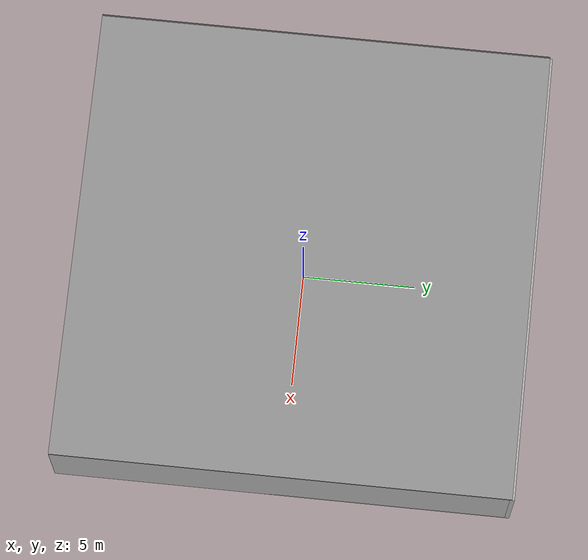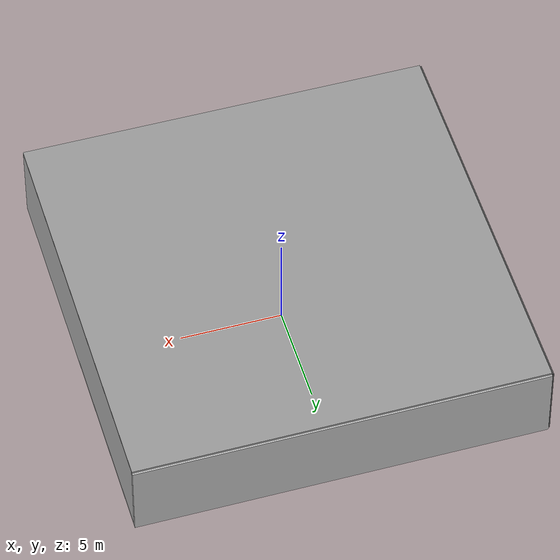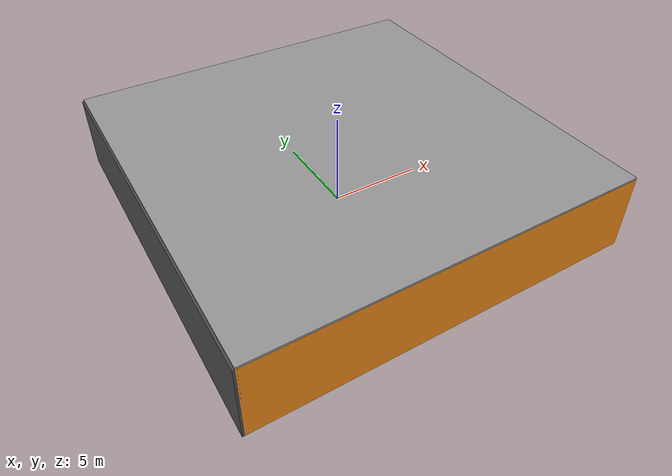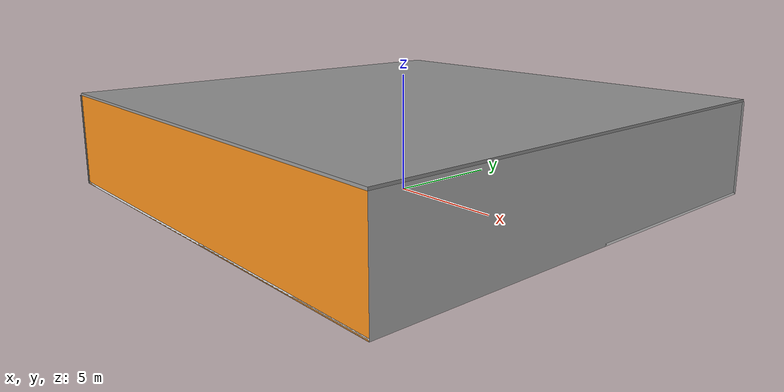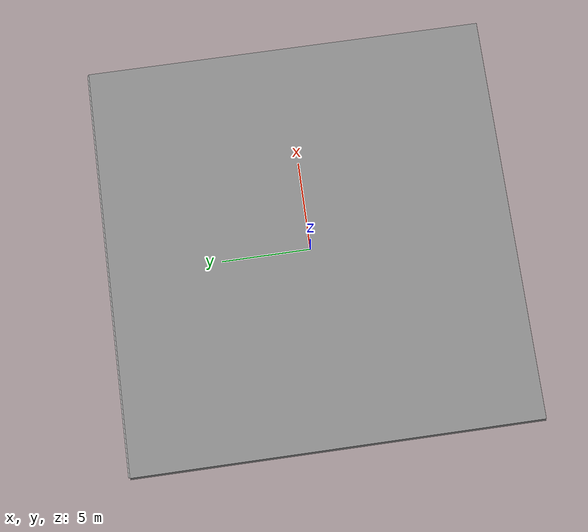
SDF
<sdf version="1.4">
 <world name="default">
  <physics type="ode">
   <max_step_size>0.001</max_step_size>
   <real_time_factor>1</real_time_factor>
   <real_time_update_rate>1000</real_time_update_rate>
   <gravity>0 0 -9.8</gravity>
  </physics>
  <scene><ambient>0.4 0.4 0.4 1</ambient><background>0.7 0.7 0.7 1</background><shadows>1</shadows></scene>
  <model name="Surrounding">
   <static>1</static>
   <link name="Ceiling">
    <collision name="Ceiling_Collision"><geometry><box><size>20 20 0.1</size></box></geometry></collision>
    <visual name="Ceiling_Visual">
     <geometry><box><size>20 20 0.1</size></box></geometry>
     <material>
      <script><uri>file://media/materials/scripts/gazebo.material</uri><name>Gazebo/Grey</name></script>
     </material>
    </visual>
    <pose>0 0 4.05 0 0 0</pose>
   </link>
   <link name="Wall_South">
    <collision name="Wall_South_Collision">
     <geometry><box><size>20 0 4</size></box></geometry>
     <pose>0 0 2 0 -0 0</pose>
    </collision>
    <visual name="Wall_South_Visual">
     <pose>0 0 2 0 -0 0</pose>
     <geometry><box><size>20 0 4</size></box></geometry>
     <material>
      <script><uri>file://media/materials/scripts/gazebo.material</uri><name>Gazebo/Orange</name></script>
     </material>
    </visual>
    <velocity_decay><linear>0</linear><angular>0</angular></velocity_decay>
    <pose>0 -10 0 0 -0 0</pose>
   </link>
   <link name="Wall_East">
    <collision name="Wall_21_Collision">
     <geometry><box><size>20 0 4</size></box></geometry>
     <pose>0 0 2 0 -0 0</pose>
    </collision>
    <visual name="Wall_21_Visual">
     <pose>0 0 2 0 -0 0</pose>
     <geometry><box><size>20 0 4</size></box></geometry>
     <material>
      <script><uri>file://media/materials/scripts/gazebo.material</uri><name>Gazebo/LightOff</name></script>
     </material>
    </visual>
    <velocity_decay><linear>0</linear><angular>0</angular></velocity_decay>
    <pose>10 0 0 0 -0 1.5708</pose>
   </link>
   <link name="Wall_North">
    <collision name="Wall_22_Collision">
     <geometry><box><size>20 0.2 4</size></box></geometry>
     <pose>0 0 2 0 -0 0</pose>
    </collision>
    <visual name="Wall_22_Visual">
     <pose>0 0 2 0 -0 0</pose>
     <geometry><box><size>20 0.2 4</size></box></geometry>
     <material>
      <script><uri>file://media/materials/scripts/gazebo.material</uri><name>Gazebo/CloudySky</name></script>
     </material>
    </visual>
    <velocity_decay><linear>0</linear><angular>0</angular></velocity_decay>
    <pose>0 10 0 0 -0 0</pose>
   </link>
   <link name="Wall_West">
    <collision name="Wall_23_Collision">
     <geometry><box><size>20 0.2 4</size></box></geometry>
     <pose>0 0 2 0 -0 0</pose>
    </collision>
    <visual name="Wall_23_Visual">
     <pose>0 0 2 0 -0 0</pose>
     <geometry><box><size>20 0.2 4</size></box></geometry>
     <material>
      <script><uri>file://media/materials/scripts/gazebo.material</uri><name>Gazebo/Road</name></script>
     </material>
    </visual>
    <velocity_decay><linear>0</linear><angular>0</angular></velocity_decay>
    <pose>-10 0 0 0 0 -1.5708</pose>
   </link>
   <link name="Ground_link">
    <collision name="collision">
     <pose>0 0 .05 0 -0 0</pose>
     <geometry><box><size>20 20 0.1</size></box></geometry>
    </collision>
    <visual name="visual">
     <pose>0 0 .05 0 -0 0</pose>
     <geometry><box><size>20 20 0.1</size></box></geometry>
     <material>
      <script><uri>file://media/materials/scripts/gazebo.material</uri><name>Gazebo/White</name></script>
     </material>
    </visual>
   </link>
   <static>1</static>
  </model>
  <spherical_coordinates>
   <surface_model>EARTH_WGS84</surface_model>
   <latitude_deg>0</latitude_deg>
   <longitude_deg>0</longitude_deg>
   <elevation>0</elevation>
   <heading_deg>0</heading_deg>
  </spherical_coordinates>
  <light name="lightball_0" type="diffuse">
   <diffuse>0.8 0.8 0.8 1</diffuse>
   <specular>0.2 0.2 0.2 1</specular>
   <attenuation>
    <range>100</range>
    <constant>0.7</constant>
    <linear>0.01</linear>
    <quadratic>0.001</quadratic>
   </attenuation>
   <direction>-0.5 0.1 -0.9</direction>
   <pose>9.82679114116 6.50377541007 3.8661947012 0 0 0</pose>
  </light>
  <light name="lightball_1" type="diffuse">
   <diffuse>0.8 0.8 0.8 1</diffuse>
   <specular>0.2 0.2 0.2 1</specular>
   <attenuation>
    <range>100</range>
    <constant>0.7</constant>
    <linear>0.01</linear>
    <quadratic>0.001</quadratic>
   </attenuation>
   <direction>-0.5 0.1 -0.9</direction>
   <pose>6.55171862794 0.537257789948 1.16790177147 0 0 0</pose>
  </light>
  <light name="lightball_2" type="diffuse">
   <diffuse>0.8 0.8 0.8 1</diffuse>
   <specular>0.2 0.2 0.2 1</specular>
   <attenuation>
    <range>100</range>
    <constant>0.7</constant>
    <linear>0.01</linear>
    <quadratic>0.001</quadratic>
   </attenuation>
   <direction>-0.5 0.1 -0.9</direction>
   <pose>9.25805330655 -0.376439027256 2.61002756077 0 0 0</pose>
  </light>
  <light name="lightball_3" type="diffuse">
   <diffuse>0.8 0.8 0.8 1</diffuse>
   <specular>0.2 0.2 0.2 1</specular>
   <attenuation>
    <range>100</range>
    <constant>0.7</constant>
    <linear>0.01</linear>
    <quadratic>0.001</quadratic>
   </attenuation>
   <direction>-0.5 0.1 -0.9</direction>
   <pose>-2.3217229529 -4.85150284961 3.79069333556 0 0 0</pose>
  </light>
  <light name="lightball_4" type="diffuse">
   <diffuse>0.8 0.8 0.8 1</diffuse>
   <specular>0.2 0.2 0.2 1</specular>
   <attenuation>
    <range>100</range>
    <constant>0.7</constant>
    <linear>0.01</linear>
    <quadratic>0.001</quadratic>
   </attenuation>
   <direction>-0.5 0.1 -0.9</direction>
   <pose>1.52034772766 -5.32619388348 1.1917437772 0 0 0</pose>
  </light>
  <light name="lightball_5" type="diffuse">
   <diffuse>0.8 0.8 0.8 1</diffuse>
   <specular>0.2 0.2 0.2 1</specular>
   <attenuation>
    <range>100</range>
    <constant>0.7</constant>
    <linear>0.01</linear>
    <quadratic>0.001</quadratic>
   </attenuation>
   <direction>-0.5 0.1 -0.9</direction>
   <pose>-2.99781449458 -9.79858886449 2.52305339424 0 0 0</pose>
  </light>
  <light name="lightball_6" type="diffuse">
   <diffuse>0.8 0.8 0.8 1</diffuse>
   <specular>0.2 0.2 0.2 1</specular>
   <attenuation>
    <range>100</range>
    <constant>0.7</constant>
    <linear>0.01</linear>
    <quadratic>0.001</quadratic>
   </attenuation>
   <direction>-0.5 0.1 -0.9</direction>
   <pose>5.18021590522 7.37892721833 1.65998904999 0 0 0</pose>
  </light>
  <light name="lightball_7" type="diffuse">
   <diffuse>0.8 0.8 0.8 1</diffuse>
   <specular>0.2 0.2 0.2 1</specular>
   <attenuation>
    <range>100</range>
    <constant>0.7</constant>
    <linear>0.01</linear>
    <quadratic>0.001</quadratic>
   </attenuation>
   <direction>-0.5 0.1 -0.9</direction>
   <pose>0.559460703194 8.03767221399 3.0155967429 0 0 0</pose>
  </light>
  <light name="lightball_8" type="diffuse">
   <diffuse>0.8 0.8 0.8 1</diffuse>
   <specular>0.2 0.2 0.2 1</specular>
   <attenuation>
    <range>100</range>
    <constant>0.7</constant>
    <linear>0.01</linear>
    <quadratic>0.001</quadratic>
   </attenuation>
   <direction>-0.5 0.1 -0.9</direction>
   <pose>8.20405405742 3.7022171699 3.30150812601 0 0 0</pose>
  </light>
  <light name="lightball_9" type="diffuse">
   <diffuse>0.8 0.8 0.8 1</diffuse>
   <specular>0.2 0.2 0.2 1</specular>
   <attenuation>
    <range>100</range>
    <constant>0.7</constant>
    <linear>0.01</linear>
    <quadratic>0.001</quadratic>
   </attenuation>
   <direction>-0.5 0.1 -0.9</direction>
   <pose>8.6513274764 6.52661033741 0.717117068984 0 0 0</pose>
  </light>
  <include>
   <uri>model://textured_shapes</uri>
   <pose>-7.39873043655 -5.34806252143 0 0 0 0.250266418758</pose>
  </include>
  <include>
   <uri>model://construction_cone</uri>
   <pose>-7.64430862452 6.89009221694 0 0 0 2.34551947468</pose>
  </include>
  <include>
   <uri>model://textured_shapes</uri>
   <pose>-3.99178231814 0.650650922494 0 0 0 0.201227685504</pose>
  </include>
  <include><uri>model://table</uri><pose>-2.27469190068 -0.419662854186 0 0 0 2.71809439686</pose></include>
  <include>
   <uri>model://construction_cone</uri>
   <pose>0.802354143072 -7.17389360345 0 0 0 2.18790491305</pose>
  </include>
  <include>
   <uri>model://robocup_3Dsim_goal</uri>
   <pose>7.7124735448 -1.92990569167 0 0 0 2.0589025787</pose>
  </include>
  <include>
   <uri>model://textured_shapes</uri>
   <pose>6.60779195132 0.775262162696 0 0 0 1.13964549906</pose>
  </include>
 </world>
</sdf>

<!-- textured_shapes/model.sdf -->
<sdf version="1.6">
  <model name="textured_shapes">
    <pose>0 0 0.5 0 0 0</pose>
    <link name="box">
      <pose>0 -1.5 0 0 0 0</pose>
      <collision name="collision">
        <geometry>
          <box>
            <size>1 1 1</size>
          </box>
        </geometry>
      </collision>
      <visual name="visual">
        <geometry>
          <box>
            <size>1 1 1</size>
          </box>
        </geometry>
        <material>
          <script>
            <uri>model://../model_source/models/textured_shapes/materials/scripts</uri>
            <uri>model://../model_source/models/textured_shapes/materials/textures</uri>
            <name>TexturedShape/Squares</name>
          </script>
        </material>
      </visual>
    </link>
    <link name="sphere">
      <collision name="collision">
        <geometry>
          <sphere>
            <radius>0.5</radius>
          </sphere>
        </geometry>
      </collision>
      <visual name="visual">
        <geometry>
          <sphere>
            <radius>0.5</radius>
          </sphere>
        </geometry>
        <material>
          <script>
            <uri>model://../model_source/models/textured_shapes/materials/scripts</uri>
            <uri>model://../model_source/models/textured_shapes/materials/textures</uri>
            <name>TexturedShape/Squares</name>
          </script>
        </material>
      </visual>
    </link>
    <link name="cylinder">
      <pose>0 1.5 0 0 0 0</pose>
      <collision name="collision">
        <geometry>
          <cylinder>
            <radius>0.5</radius>
            <length>1</length>
          </cylinder>
        </geometry>
      </collision>
      <visual name="visual">
        <geometry>
          <cylinder>
            <radius>0.5</radius>
            <length>1</length>
          </cylinder>
        </geometry>
        <material>
          <script>
            <uri>model://../model_source/models/textured_shapes/materials/scripts</uri>
            <uri>model://../model_source/models/textured_shapes/materials/textures</uri>
            <name>TexturedShape/Squares</name>
          </script>
        </material>
      </visual>
    </link>
  </model>
</sdf>

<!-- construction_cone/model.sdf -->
<sdf version="1.5">
  <model name="Construction Cone">
    <link name="link">
      <collision name="collision">
        <geometry>
          <mesh>
            <scale>10 10 10</scale>
            <uri>file://isr-testbed/construction_cone/meshes/construction_cone.dae</uri>
          </mesh>
        </geometry>
      </collision>
      <visual name="visual">
        <geometry>
          <mesh>
            <scale>10 10 10</scale>
            <uri>file://isr-testbed/construction_cone/meshes/construction_cone.dae</uri>
          </mesh>
        </geometry>
      </visual>
    </link>
  </model>
</sdf>

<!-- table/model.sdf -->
<sdf version="1.5">
  <model name="table">
    <static>true</static>
    <link name="link">
      <collision name="surface">
        <pose>0 0 1.0 0 0 0</pose>
        <geometry>
          <box>
            <size>1.5 0.8 0.03</size>
          </box>
        </geometry>
        <surface>
          <friction>
            <ode>
              <mu>0.6</mu>
              <mu2>0.6</mu2>
            </ode>
          </friction>
        </surface>
      </collision>
      <visual name="visual1">
        <pose>0 0 1.0 0 0 0</pose>
        <geometry>
          <box>
            <size>1.5 0.8 0.03</size>
          </box>
        </geometry>
        <material>
          <script>
            <uri>model://media/materials/scripts/gazebo.material</uri>
            <name>Gazebo/Wood</name>
          </script>
        </material>
      </visual>
      <collision name="front_left_leg">
        <pose>0.68 0.38 0.5 0 0 0</pose>
        <geometry>
          <cylinder>
            <radius>0.02</radius>
            <length>1.0</length>
          </cylinder>
        </geometry>
      </collision>
      <visual name="front_left_leg">
        <pose>0.68 0.38 0.5 0 0 0</pose>
        <geometry>
          <cylinder>
            <radius>0.02</radius>
            <length>1.0</length>
          </cylinder>
        </geometry>
        <material>
          <script>
            <uri>model://media/materials/scripts/gazebo.material</uri>
            <name>Gazebo/Grey</name>
          </script>
        </material>
      </visual>
      <collision name="front_right_leg">
        <pose>0.68 -0.38 0.5 0 0 0</pose>
        <geometry>
          <cylinder>
            <radius>0.02</radius>
            <length>1.0</length>
          </cylinder>
        </geometry>
      </collision>
      <visual name="front_right_leg">
        <pose>0.68 -0.38 0.5 0 0 0</pose>
        <geometry>
          <cylinder>
            <radius>0.02</radius>
            <length>1.0</length>
          </cylinder>
        </geometry>
        <material>
          <script>
            <uri>model://media/materials/scripts/gazebo.material</uri>
            <name>Gazebo/Grey</name>
          </script>
        </material>
      </visual>
      <collision name="back_right_leg">
        <pose>-0.68 -0.38 0.5 0 0 0</pose>
        <geometry>
          <cylinder>
            <radius>0.02</radius>
            <length>1.0</length>
          </cylinder>
        </geometry>
      </collision>
      <visual name="back_right_leg">
        <pose>-0.68 -0.38 0.5 0 0 0</pose>
        <geometry>
          <cylinder>
            <radius>0.02</radius>
            <length>1.0</length>
          </cylinder>
        </geometry>
        <material>
          <script>
            <uri>model://media/materials/scripts/gazebo.material</uri>
            <name>Gazebo/Grey</name>
          </script>
        </material>
      </visual>
      <collision name="back_left_leg">
        <pose>-0.68 0.38 0.5 0 0 0</pose>
        <geometry>
          <cylinder>
            <radius>0.02</radius>
            <length>1.0</length>
          </cylinder>
        </geometry>
      </collision>
      <visual name="back_left_leg">
        <pose>-0.68 0.38 0.5 0 0 0</pose>
        <geometry>
          <cylinder>
            <radius>0.02</radius>
            <length>1.0</length>
          </cylinder>
        </geometry>
        <material>
          <script>
            <uri>model://media/materials/scripts/gazebo.material</uri>
            <name>Gazebo/Grey</name>
          </script>
        </material>
      </visual>
    </link>
  </model>
</sdf>

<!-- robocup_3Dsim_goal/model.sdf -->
<sdf version="1.5">
  <model name="robocup_3d_goal">
    <static>true</static>
    <link name="left_post">
      <pose>0 1.05 0.45 0 0 0</pose>
      <collision name="collision">
        <geometry>
          <cylinder>
            <radius>0.05</radius>
            <length>0.9</length>
          </cylinder>
        </geometry>
      </collision>
      <visual name="visual">
        <geometry>
          <cylinder>
            <radius>0.05</radius>
            <length>0.9</length>
          </cylinder>
        </geometry>
        <material>
          <script>
            <uri>file://media/materials/scripts/gazebo.material</uri>
            <name>Gazebo/ZincYellow</name>
          </script>
        </material>
      </visual>
    </link>
    <link name="left_support_horiz_lower">
      <pose>0.30 1.05 0.01 0 0 0</pose>
      <collision name="collision">
        <geometry>
          <box>
            <size>0.50 0.02 0.02</size>
          </box>
        </geometry>
      </collision>
      <visual name="visual">
        <geometry>
          <box>
            <size>0.50 0.02 0.02</size>
          </box>
        </geometry>
        <material>
          <script>
            <uri>file://media/materials/scripts/gazebo.material</uri>
            <name>Gazebo/White</name>
          </script>
        </material>
      </visual>
    </link>
    <link name="left_support_horiz_upper">
      <pose>0.30 1.05 0.79 0 0 0</pose>
      <collision name="collision">
        <geometry>
          <box>
            <size>0.50 0.02 0.02</size>
          </box>
        </geometry>
      </collision>
      <visual name="visual">
        <geometry>
          <box>
            <size>0.50 0.02 0.02</size>
          </box>
        </geometry>
        <material>
          <script>
            <uri>file://media/materials/scripts/gazebo.material</uri>
            <name>Gazebo/White</name>
          </script>
        </material>
      </visual>
    </link>
    <link name="left_support_vertical">
      <pose>0.56 1.05 0.4 0 1.5708 0</pose>
      <collision name="collision">
        <geometry>
          <box>
            <size>0.80 0.02 0.02</size>
          </box>
        </geometry>
      </collision>
      <visual name="visual">
        <geometry>
          <box>
            <size>0.80 0.02 0.02</size>
          </box>
        </geometry>
        <material>
          <script>
            <uri>file://media/materials/scripts/gazebo.material</uri>
            <name>Gazebo/White</name>
          </script>
        </material>
      </visual>
    </link>
    <link name="right_support_horiz_lower">
      <pose>0.30 -1.05 0.01 0 0 0</pose>
      <collision name="collision">
        <geometry>
          <box>
            <size>0.50 0.02 0.02</size>
          </box>
        </geometry>
      </collision>
      <visual name="visual">
        <geometry>
          <box>
            <size>0.50 0.02 0.02</size>
          </box>
        </geometry>
        <material>
          <script>
            <uri>file://media/materials/scripts/gazebo.material</uri>
            <name>Gazebo/White</name>
          </script>
        </material>
      </visual>
    </link>
    <link name="right_support_horiz_upper">
      <pose>0.30 -1.05 0.79 0 0 0</pose>
      <collision name="collision">
        <geometry>
          <box>
            <size>0.50 0.02 0.02</size>
          </box>
        </geometry>
      </collision>
      <visual name="visual">
        <geometry>
          <box>
            <size>0.50 0.02 0.02</size>
          </box>
        </geometry>
        <material>
          <script>
            <uri>file://media/materials/scripts/gazebo.material</uri>
            <name>Gazebo/White</name>
          </script>
        </material>
      </visual>
    </link>
    <link name="right_support_vertical">
      <pose>0.56 -1.05 0.4 0 1.5708 0</pose>
      <collision name="collision">
        <geometry>
          <box>
            <size>0.80 0.02 0.02</size>
          </box>
        </geometry>
      </collision>
      <visual name="visual">
        <geometry>
          <box>
            <size>0.80 0.02 0.02</size>
          </box>
        </geometry>
        <material>
          <script>
            <uri>file://media/materials/scripts/gazebo.material</uri>
            <name>Gazebo/White</name>
          </script>
        </material>
      </visual>
    </link>
    <link name="center_support_horiz_lower">
      <pose>0.56 0 0.01 0 1.5708 0</pose>
      <collision name="collision">
        <geometry>
          <box>
            <size>0.02 2.08 0.02</size>
          </box>
        </geometry>
      </collision>
      <visual name="visual">
        <geometry>
          <box>
            <size>0.02 2.08 0.02</size>
          </box>
        </geometry>
        <material>
          <script>
            <uri>file://media/materials/scripts/gazebo.material</uri>
            <name>Gazebo/White</name>
          </script>
        </material>
      </visual>
    </link>
    <link name="center_support_horiz_upper">
      <pose>0.56 0 0.79 0 1.5708 0</pose>
      <collision name="collision">
        <geometry>
          <box>
            <size>0.02 2.08 0.02</size>
          </box>
        </geometry>
      </collision>
      <visual name="visual">
        <geometry>
          <box>
            <size>0.02 2.08 0.02</size>
          </box>
        </geometry>
        <material>
          <script>
            <uri>file://media/materials/scripts/gazebo.material</uri>
            <name>Gazebo/White</name>
          </script>
        </material>
      </visual>
    </link>
    <link name="right_post">
      <pose>0 -1.05 0.45 0 0 0</pose>
      <collision name="collision">
        <geometry>
          <cylinder>
            <radius>0.05</radius>
            <length>0.9</length>
          </cylinder>
        </geometry>
      </collision>
      <visual name="visual">
        <geometry>
          <cylinder>
            <radius>0.05</radius>
            <length>0.9</length>
          </cylinder>
        </geometry>
        <material>
          <script>
            <uri>file://media/materials/scripts/gazebo.material</uri>
            <name>Gazebo/ZincYellow</name>
          </script>
        </material>
      </visual>
    </link>
    <link name="crossbar">
      <pose>0 0 0.85 1.57 1.57 0</pose>
      <collision name="collision">
        <geometry>
          <cylinder>
            <radius>0.05</radius>
            <length>2.0</length>
          </cylinder>
        </geometry>
      </collision>
      <visual name="visual">
        <geometry>
          <cylinder>
            <radius>0.05</radius>
            <length>2.0</length>
          </cylinder>
        </geometry>
        <material>
          <script>
            <uri>file://media/materials/scripts/gazebo.material</uri>
            <name>Gazebo/ZincYellow</name>
          </script>
        </material>
      </visual>
    </link>
    <link name="center_net">
      <pose>0.56 0 0.40 0 0 0</pose>
      <collision name="collision">
        <geometry>
          <box>
            <size>0.01 2.1 0.80</size>
          </box>
        </geometry>
      </collision>
      <visual name="visual">
        <geometry>
          <box>
            <size>0.01 2.1 0.80</size>
          </box>
        </geometry>
        <material>
          <script>
            <uri>model://../model_source/models/robocup09_spl_field/materials/scripts/</uri>
            <uri>model://../model_source/models/robocup09_spl_field/materials/textures/</uri>
            <name>RoboCup/Net</name>
          </script>
        </material>
      </visual>
    </link>
    <link name="left_net">
      <pose>0.30 1.05 0.40 0 0 0</pose>
      <collision name="collision">
        <geometry>
          <box>
            <size>0.50 0.01 0.76</size>
          </box>
        </geometry>
      </collision>
      <visual name="visual">
        <geometry>
          <box>
            <size>0.50 0.01 0.76</size>
          </box>
        </geometry>
        <material>
          <script>
            <uri>model://../model_source/models/robocup09_spl_field/materials/scripts/</uri>
            <uri>model://../model_source/models/robocup09_spl_field/materials/textures/</uri>
            <name>RoboCup/Net</name>
          </script>
        </material>
      </visual>
    </link>
    <link name="right_net">
      <pose>0.30 -1.05 0.40 0 0 0</pose>
      <collision name="collision">
        <geometry>
          <box>
            <size>0.50 0.01 0.76</size>
          </box>
        </geometry>
      </collision>
      <visual name="visual">
        <geometry>
          <box>
            <size>0.50 0.01 0.76</size>
          </box>
        </geometry>
        <material>
          <script>
            <uri>model://../model_source/models/robocup09_spl_field/materials/scripts/</uri>
            <uri>model://../model_source/models/robocup09_spl_field/materials/textures/</uri>
            <name>RoboCup/Net</name>
          </script>
        </material>
      </visual>
    </link>
  </model>
</sdf>
